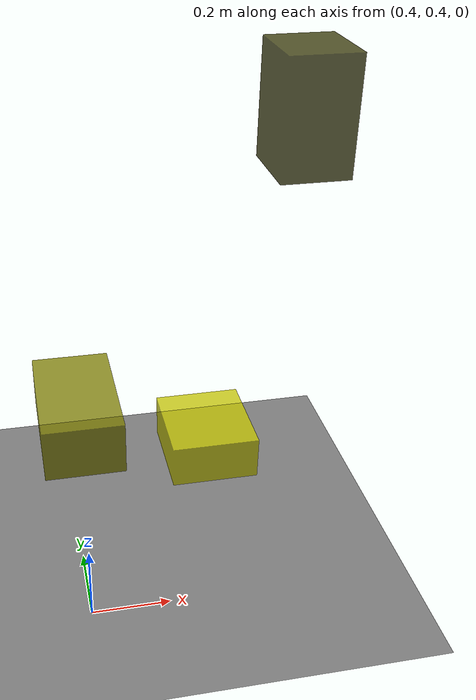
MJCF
<?xml version="1.0"?>
<mujoco model="obstacle_scene">
  <compiler angle="radian" coordinate="local"/>
  <option timestep="0.001" gravity="0 0 -9.81"/>

  <asset>
    <material name="obstacle_mat" rgba="0.8 0.8 0.0 0.8"/>
    <material name="ground_mat" rgba="0.5 0.5 0.5 1"/>
  </asset>

  <worldbody>
    <!-- Ground plane -->
    <geom name="ground" type="plane" size="3 3 0.1" material="ground_mat"/>

    <!-- Obstacles -->
    <body name="obstacle_0" pos="0.884793 0.476446 1.229501">
      <geom name="obs_0" type="box" size="0.073366 0.085925 0.122277" rgba="0.2 0.2 0.0 0.8"/>
    </body>
    <body name="obstacle_1" pos="0.420100 0.772286 0.349320">
      <geom name="obs_1" type="box" size="0.103567 0.173157 0.072008" rgba="0.5 0.5 0.0 0.8"/>
    </body>
    <body name="obstacle_2" pos="0.768463 0.755362 0.239896">
      <geom name="obs_2" type="box" size="0.114920 0.122915 0.058467" rgba="0.8 0.8 0.0 0.8"/>
    </body>
  </worldbody>
</mujoco>
